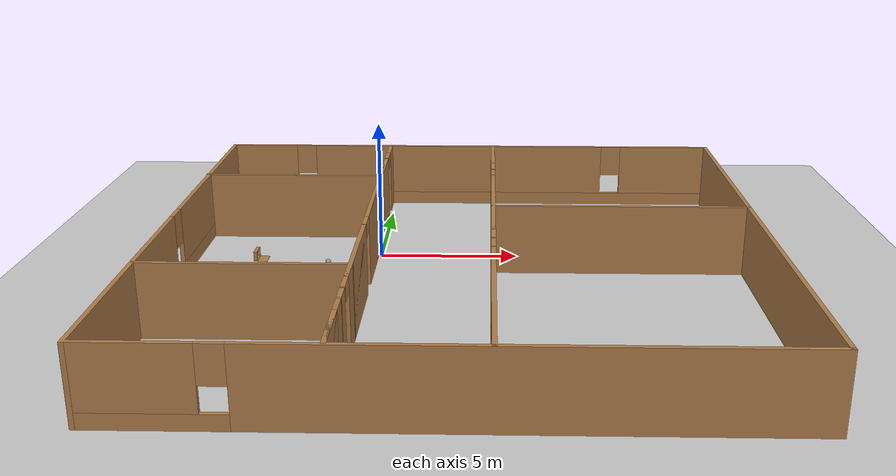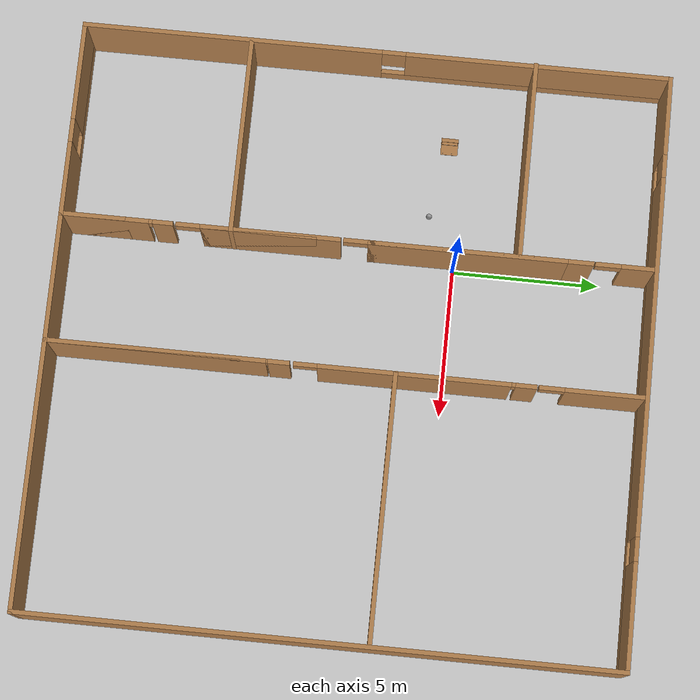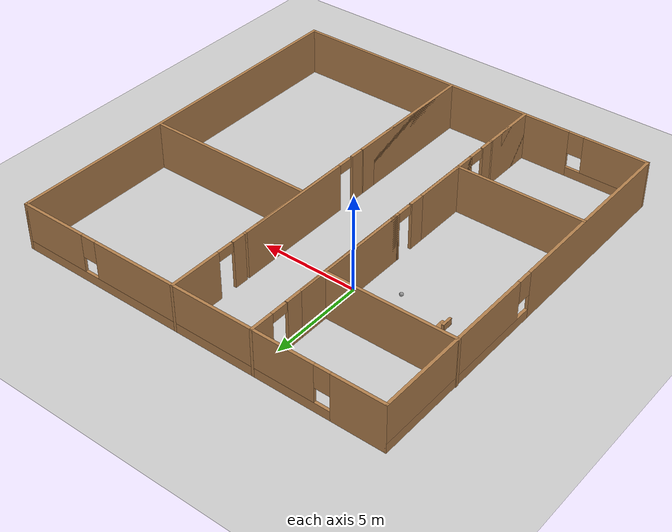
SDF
<sdf version="1.7">
 <world name="default">
  <model name="ground_plane">
   <static>1</static>
   <link name="link">
    <collision name="collision">
     <geometry><plane><normal>0 0 1</normal><size>100 100</size></plane></geometry>
     <surface>
      <contact><collide_bitmask>65535</collide_bitmask></contact>
      <friction><ode><mu>100</mu><mu2>50</mu2></ode></friction>
     </surface>
    </collision>
    <visual name="visual">
     <cast_shadows>0</cast_shadows>
     <geometry><plane><normal>0 0 1</normal><size>100 100</size></plane></geometry>
     <material>
      <script><uri>file://media/materials/scripts/gazebo.material</uri><name>Gazebo/Grey</name></script>
     </material>
    </visual>
   </link>
  </model>
  <model name="building">
   <pose>3.10221 -3.25388 0 0 -0 0</pose>
   <link name="Wall_11">
    <collision name="Wall_11_Collision">
     <geometry><box><size>6.75 0.15 2.5</size></box></geometry>
     <pose>0 0 1.25 0 -0 0</pose>
    </collision>
    <visual name="Wall_11_Visual">
     <pose>0 0 1.25 0 -0 0</pose>
     <geometry><box><size>6.75 0.15 2.5</size></box></geometry>
     <material>
      <script><uri>file://media/materials/scripts/gazebo.material</uri><name>Gazebo/Wood</name></script>
      <ambient>0.996078 0.47451 0.0196078 1</ambient>
     </material>
     <meta><layer>0</layer></meta>
    </visual>
    <pose>-6.6429 5.37717 0 0 -0 3.14159</pose>
   </link>
   <link name="Wall_13">
    <collision name="Wall_13_Collision">
     <geometry><box><size>6.75 0.15 2.5</size></box></geometry>
     <pose>0 0 1.25 0 -0 0</pose>
    </collision>
    <visual name="Wall_13_Visual">
     <pose>0 0 1.25 0 -0 0</pose>
     <geometry><box><size>6.75 0.15 2.5</size></box></geometry>
     <material>
      <script><uri>file://media/materials/scripts/gazebo.material</uri><name>Gazebo/Wood</name></script>
      <ambient>0.996078 0.47451 0.0196078 1</ambient>
     </material>
     <meta><layer>0</layer></meta>
    </visual>
    <pose>-6.5897 -4.25211 0 0 -0 3.14159</pose>
   </link>
   <link name="Wall_15">
    <collision name="Wall_15_Collision">
     <geometry><box><size>9 0.15 2.5</size></box></geometry>
     <pose>0 0 1.25 0 -0 0</pose>
    </collision>
    <visual name="Wall_15_Visual">
     <pose>0 0 1.25 0 -0 0</pose>
     <geometry><box><size>9 0.15 2.5</size></box></geometry>
     <material>
      <script><uri>file://media/materials/scripts/gazebo.material</uri><name>Gazebo/Wood</name></script>
      <ambient>0.996078 0.47451 0.0196078 1</ambient>
     </material>
     <meta><layer>0</layer></meta>
    </visual>
    <pose>5.47114 1.65314 0 0 -0 0</pose>
   </link>
   <link name="Wall_2">
    <pose>0.017895 9.9242 0 0 -0 0</pose>
    <visual name="Wall_2_Visual_0">
     <pose>-8.64042 0 1.25 0 -0 0</pose>
     <geometry><box><size>2.71916 0.15 2.5</size></box></geometry>
     <material>
      <script><uri>file://media/materials/scripts/gazebo.material</uri><name>Gazebo/Wood</name></script>
      <ambient>0.996078 0.47451 0.0196078 1</ambient>
     </material>
     <meta><layer>0</layer></meta>
    </visual>
    <collision name="Wall_2_Collision_0">
     <geometry><box><size>2.71916 0.15 2.5</size></box></geometry>
     <pose>-8.64042 0 1.25 0 -0 0</pose>
    </collision>
    <visual name="Wall_2_Visual_1">
     <pose>1.35958 0 0.25 0 -0 0</pose>
     <geometry><box><size>17.2808 0.15 0.5</size></box></geometry>
     <material>
      <script><uri>file://media/materials/scripts/gazebo.material</uri><name>Gazebo/Wood</name></script>
      <ambient>0.996078 0.47451 0.0196078 1</ambient>
     </material>
     <meta><layer>0</layer></meta>
    </visual>
    <collision name="Wall_2_Collision_1">
     <geometry><box><size>17.2808 0.15 0.5</size></box></geometry>
     <pose>1.35958 0 0.25 0 -0 0</pose>
    </collision>
    <visual name="Wall_2_Visual_2">
     <pose>-0.458517 0 1.5 0 -0 0</pose>
     <geometry><box><size>12.0446 0.15 2</size></box></geometry>
     <material>
      <script><uri>file://media/materials/scripts/gazebo.material</uri><name>Gazebo/Wood</name></script>
      <ambient>0.996078 0.47451 0.0196078 1</ambient>
     </material>
     <meta><layer>0</layer></meta>
    </visual>
    <collision name="Wall_2_Collision_2">
     <geometry><box><size>12.0446 0.15 2</size></box></geometry>
     <pose>-0.458517 0 1.5 0 -0 0</pose>
    </collision>
    <visual name="Wall_2_Visual_3">
     <pose>8.1819 0 1.5 0 -0 0</pose>
     <geometry><box><size>3.63619 0.15 2</size></box></geometry>
     <material>
      <script><uri>file://media/materials/scripts/gazebo.material</uri><name>Gazebo/Wood</name></script>
      <ambient>0.996078 0.47451 0.0196078 1</ambient>
     </material>
     <meta><layer>0</layer></meta>
    </visual>
    <collision name="Wall_2_Collision_3">
     <geometry><box><size>3.63619 0.15 2</size></box></geometry>
     <pose>8.1819 0 1.5 0 -0 0</pose>
    </collision>
    <visual name="Wall_2_Visual_4">
     <pose>-6.88084 0 1.9 0 -0 0</pose>
     <geometry><box><size>0.8 0.15 1.2</size></box></geometry>
     <material>
      <script><uri>file://media/materials/scripts/gazebo.material</uri><name>Gazebo/Wood</name></script>
      <ambient>0.996078 0.47451 0.0196078 1</ambient>
     </material>
     <meta><layer>0</layer></meta>
    </visual>
    <collision name="Wall_2_Collision_4">
     <geometry><box><size>0.8 0.15 1.2</size></box></geometry>
     <pose>-6.88084 0 1.9 0 -0 0</pose>
    </collision>
    <visual name="Wall_2_Visual_5">
     <pose>5.96381 0 1.9 0 -0 0</pose>
     <geometry><box><size>0.8 0.15 1.2</size></box></geometry>
     <material>
      <script><uri>file://media/materials/scripts/gazebo.material</uri><name>Gazebo/Wood</name></script>
      <ambient>0.996078 0.47451 0.0196078 1</ambient>
     </material>
     <meta><layer>0</layer></meta>
    </visual>
    <collision name="Wall_2_Collision_5">
     <geometry><box><size>0.8 0.15 1.2</size></box></geometry>
     <pose>5.96381 0 1.9 0 -0 0</pose>
    </collision>
   </link>
   <link name="Wall_3">
    <collision name="Wall_3_Collision">
     <geometry><box><size>20 0.15 2.5</size></box></geometry>
     <pose>0 0 1.25 0 -0 0</pose>
    </collision>
    <visual name="Wall_3_Visual">
     <pose>0 0 1.25 0 -0 0</pose>
     <geometry><box><size>20 0.15 2.5</size></box></geometry>
     <material>
      <script><uri>file://media/materials/scripts/gazebo.material</uri><name>Gazebo/Wood</name></script>
      <ambient>0.996078 0.47451 0.0196078 1</ambient>
     </material>
     <meta><layer>0</layer></meta>
    </visual>
    <pose>9.9429 -0.0008 0 0 -0 -1.5708</pose>
   </link>
   <link name="Wall_4">
    <pose>0.017895 -9.9258 0 0 -0 3.14159</pose>
    <visual name="Wall_4_Visual_0">
     <pose>-2.10608 0 1.25 0 -0 0</pose>
     <geometry><box><size>15.7878 0.15 2.5</size></box></geometry>
     <material>
      <script><uri>file://media/materials/scripts/gazebo.material</uri><name>Gazebo/Wood</name></script>
      <ambient>0.996078 0.47451 0.0196078 1</ambient>
     </material>
     <meta><layer>0</layer></meta>
    </visual>
    <collision name="Wall_4_Collision_0">
     <geometry><box><size>15.7878 0.15 2.5</size></box></geometry>
     <pose>-2.10608 0 1.25 0 -0 0</pose>
    </collision>
    <visual name="Wall_4_Visual_1">
     <pose>7.89392 0 0.25 0 -0 0</pose>
     <geometry><box><size>4.21216 0.15 0.5</size></box></geometry>
     <material>
      <script><uri>file://media/materials/scripts/gazebo.material</uri><name>Gazebo/Wood</name></script>
      <ambient>0.996078 0.47451 0.0196078 1</ambient>
     </material>
     <meta><layer>0</layer></meta>
    </visual>
    <collision name="Wall_4_Collision_1">
     <geometry><box><size>4.21216 0.15 0.5</size></box></geometry>
     <pose>7.89392 0 0.25 0 -0 0</pose>
    </collision>
    <visual name="Wall_4_Visual_2">
     <pose>8.29392 0 1.5 0 -0 0</pose>
     <geometry><box><size>3.41215 0.15 2</size></box></geometry>
     <material>
      <script><uri>file://media/materials/scripts/gazebo.material</uri><name>Gazebo/Wood</name></script>
      <ambient>0.996078 0.47451 0.0196078 1</ambient>
     </material>
     <meta><layer>0</layer></meta>
    </visual>
    <collision name="Wall_4_Collision_2">
     <geometry><box><size>3.41215 0.15 2</size></box></geometry>
     <pose>8.29392 0 1.5 0 -0 0</pose>
    </collision>
    <visual name="Wall_4_Visual_3">
     <pose>6.18785 0 1.9 0 -0 0</pose>
     <geometry><box><size>0.8 0.15 1.2</size></box></geometry>
     <material>
      <script><uri>file://media/materials/scripts/gazebo.material</uri><name>Gazebo/Wood</name></script>
      <ambient>0.996078 0.47451 0.0196078 1</ambient>
     </material>
     <meta><layer>0</layer></meta>
    </visual>
    <collision name="Wall_4_Collision_3">
     <geometry><box><size>0.8 0.15 1.2</size></box></geometry>
     <pose>6.18785 0 1.9 0 -0 0</pose>
    </collision>
   </link>
   <link name="Wall_5">
    <pose>-9.9071 -0.0008 0 0 -0 1.5708</pose>
    <visual name="Wall_5_Visual_0">
     <pose>-4.91256 0 1.25 0 -0 0</pose>
     <geometry><box><size>10.1749 0.15 2.5</size></box></geometry>
     <material>
      <script><uri>file://media/materials/scripts/gazebo.material</uri><name>Gazebo/Wood</name></script>
      <ambient>0.996078 0.47451 0.0196078 1</ambient>
     </material>
     <meta><layer>0</layer></meta>
    </visual>
    <collision name="Wall_5_Collision_0">
     <geometry><box><size>10.1749 0.15 2.5</size></box></geometry>
     <pose>-4.91256 0 1.25 0 -0 0</pose>
    </collision>
    <visual name="Wall_5_Visual_1">
     <pose>5.08744 0 0.25 0 -0 0</pose>
     <geometry><box><size>9.82512 0.15 0.5</size></box></geometry>
     <material>
      <script><uri>file://media/materials/scripts/gazebo.material</uri><name>Gazebo/Wood</name></script>
      <ambient>0.996078 0.47451 0.0196078 1</ambient>
     </material>
     <meta><layer>0</layer></meta>
    </visual>
    <collision name="Wall_5_Collision_1">
     <geometry><box><size>9.82512 0.15 0.5</size></box></geometry>
     <pose>5.08744 0 0.25 0 -0 0</pose>
    </collision>
    <visual name="Wall_5_Visual_2">
     <pose>5.48744 0 1.5 0 -0 0</pose>
     <geometry><box><size>9.02511 0.15 2</size></box></geometry>
     <material>
      <script><uri>file://media/materials/scripts/gazebo.material</uri><name>Gazebo/Wood</name></script>
      <ambient>0.996078 0.47451 0.0196078 1</ambient>
     </material>
     <meta><layer>0</layer></meta>
    </visual>
    <collision name="Wall_5_Collision_2">
     <geometry><box><size>9.02511 0.15 2</size></box></geometry>
     <pose>5.48744 0 1.5 0 -0 0</pose>
    </collision>
    <visual name="Wall_5_Visual_3">
     <pose>0.574885 0 1.9 0 -0 0</pose>
     <geometry><box><size>0.8 0.15 1.2</size></box></geometry>
     <material>
      <script><uri>file://media/materials/scripts/gazebo.material</uri><name>Gazebo/Wood</name></script>
      <ambient>0.996078 0.47451 0.0196078 1</ambient>
     </material>
     <meta><layer>0</layer></meta>
    </visual>
    <collision name="Wall_5_Collision_3">
     <geometry><box><size>0.8 0.15 1.2</size></box></geometry>
     <pose>0.574885 0 1.9 0 -0 0</pose>
    </collision>
   </link>
   <link name="Wall_7">
    <pose>-3.2897 0.0008 0 0 -0 -1.5708</pose>
    <visual name="Wall_7_Visual_0">
     <pose>-9.37307 0 1.25 0 -0 0</pose>
     <geometry><box><size>1.25386 0.15 2.5</size></box></geometry>
     <material>
      <script><uri>file://media/materials/scripts/gazebo.material</uri><name>Gazebo/Wood</name></script>
      <ambient>0.996078 0.47451 0.0196078 1</ambient>
     </material>
     <meta><layer>0</layer></meta>
    </visual>
    <collision name="Wall_7_Collision_0">
     <geometry><box><size>1.25386 0.15 2.5</size></box></geometry>
     <pose>-9.37307 0 1.25 0 -0 0</pose>
    </collision>
    <visual name="Wall_7_Visual_1">
     <pose>-4.08502 0 1.25 0 -0 0</pose>
     <geometry><box><size>7.52223 0.15 2.5</size></box></geometry>
     <material>
      <script><uri>file://media/materials/scripts/gazebo.material</uri><name>Gazebo/Wood</name></script>
      <ambient>0.996078 0.47451 0.0196078 1</ambient>
     </material>
     <meta><layer>0</layer></meta>
    </visual>
    <collision name="Wall_7_Collision_1">
     <geometry><box><size>7.52223 0.15 2.5</size></box></geometry>
     <pose>-4.08502 0 1.25 0 -0 0</pose>
    </collision>
    <visual name="Wall_7_Visual_2">
     <pose>-3.65402 0 1.25 0 -0 0</pose>
     <geometry><box><size>6.66023 0.15 2.5</size></box></geometry>
     <material>
      <script><uri>file://media/materials/scripts/gazebo.material</uri><name>Gazebo/Wood</name></script>
      <ambient>0.996078 0.47451 0.0196078 1</ambient>
     </material>
     <meta><layer>0</layer></meta>
    </visual>
    <collision name="Wall_7_Collision_2">
     <geometry><box><size>6.66023 0.15 2.5</size></box></geometry>
     <pose>-3.65402 0 1.25 0 -0 0</pose>
    </collision>
    <visual name="Wall_7_Visual_3">
     <pose>2.92853 0 1.25 0 -0 0</pose>
     <geometry><box><size>4.70486 0.15 2.5</size></box></geometry>
     <material>
      <script><uri>file://media/materials/scripts/gazebo.material</uri><name>Gazebo/Wood</name></script>
      <ambient>0.996078 0.47451 0.0196078 1</ambient>
     </material>
     <meta><layer>0</layer></meta>
    </visual>
    <collision name="Wall_7_Collision_3">
     <geometry><box><size>4.70486 0.15 2.5</size></box></geometry>
     <pose>2.92853 0 1.25 0 -0 0</pose>
    </collision>
    <visual name="Wall_7_Visual_4">
     <pose>3.33636 0 1.25 0 -0 0</pose>
     <geometry><box><size>3.8892 0.15 2.5</size></box></geometry>
     <material>
      <script><uri>file://media/materials/scripts/gazebo.material</uri><name>Gazebo/Wood</name></script>
      <ambient>0.996078 0.47451 0.0196078 1</ambient>
     </material>
     <meta><layer>0</layer></meta>
    </visual>
    <collision name="Wall_7_Collision_4">
     <geometry><box><size>3.8892 0.15 2.5</size></box></geometry>
     <pose>3.33636 0 1.25 0 -0 0</pose>
    </collision>
    <visual name="Wall_7_Visual_5">
     <pose>6.52698 0 1.25 0 -0 0</pose>
     <geometry><box><size>0.692034 0.15 2.5</size></box></geometry>
     <material>
      <script><uri>file://media/materials/scripts/gazebo.material</uri><name>Gazebo/Wood</name></script>
      <ambient>0.996078 0.47451 0.0196078 1</ambient>
     </material>
     <meta><layer>0</layer></meta>
    </visual>
    <collision name="Wall_7_Collision_5">
     <geometry><box><size>0.692034 0.15 2.5</size></box></geometry>
     <pose>6.52698 0 1.25 0 -0 0</pose>
    </collision>
    <visual name="Wall_7_Visual_6">
     <pose>8.49733 0 1.25 0 -0 0</pose>
     <geometry><box><size>3.00534 0.15 2.5</size></box></geometry>
     <material>
      <script><uri>file://media/materials/scripts/gazebo.material</uri><name>Gazebo/Wood</name></script>
      <ambient>0.996078 0.47451 0.0196078 1</ambient>
     </material>
     <meta><layer>0</layer></meta>
    </visual>
    <collision name="Wall_7_Collision_6">
     <geometry><box><size>3.00534 0.15 2.5</size></box></geometry>
     <pose>8.49733 0 1.25 0 -0 0</pose>
    </collision>
    <visual name="Wall_7_Visual_7">
     <pose>8.8865 0 1.25 0 -0 0</pose>
     <geometry><box><size>2.22701 0.15 2.5</size></box></geometry>
     <material>
      <script><uri>file://media/materials/scripts/gazebo.material</uri><name>Gazebo/Wood</name></script>
      <ambient>0.996078 0.47451 0.0196078 1</ambient>
     </material>
     <meta><layer>0</layer></meta>
    </visual>
    <collision name="Wall_7_Collision_7">
     <geometry><box><size>2.22701 0.15 2.5</size></box></geometry>
     <pose>8.8865 0 1.25 0 -0 0</pose>
    </collision>
    <visual name="Wall_7_Visual_8">
     <pose>-8.31513 0 2.25 0 -0 0</pose>
     <geometry><box><size>0.862004 0.15 0.5</size></box></geometry>
     <material>
      <script><uri>file://media/materials/scripts/gazebo.material</uri><name>Gazebo/Wood</name></script>
      <ambient>0.996078 0.47451 0.0196078 1</ambient>
     </material>
     <meta><layer>0</layer></meta>
    </visual>
    <collision name="Wall_7_Collision_8">
     <geometry><box><size>0.862004 0.15 0.5</size></box></geometry>
     <pose>-8.31513 0 2.25 0 -0 0</pose>
    </collision>
    <visual name="Wall_7_Visual_9">
     <pose>0.083926 0 2.25 0 -0 0</pose>
     <geometry><box><size>0.815661 0.15 0.5</size></box></geometry>
     <material>
      <script><uri>file://media/materials/scripts/gazebo.material</uri><name>Gazebo/Wood</name></script>
      <ambient>0.996078 0.47451 0.0196078 1</ambient>
     </material>
     <meta><layer>0</layer></meta>
    </visual>
    <collision name="Wall_7_Collision_9">
     <geometry><box><size>0.815661 0.15 0.5</size></box></geometry>
     <pose>0.083926 0 2.25 0 -0 0</pose>
    </collision>
    <visual name="Wall_7_Visual_10">
     <pose>0.083926 0 2.25 0 -0 0</pose>
     <geometry><box><size>0.815661 0.15 0.5</size></box></geometry>
     <material>
      <script><uri>file://media/materials/scripts/gazebo.material</uri><name>Gazebo/Wood</name></script>
      <ambient>0.996078 0.47451 0.0196078 1</ambient>
     </material>
     <meta><layer>0</layer></meta>
    </visual>
    <collision name="Wall_7_Collision_10">
     <geometry><box><size>0.815661 0.15 0.5</size></box></geometry>
     <pose>0.083926 0 2.25 0 -0 0</pose>
    </collision>
    <visual name="Wall_7_Visual_11">
     <pose>5.68781 0 2.25 0 -0 0</pose>
     <geometry><box><size>0.813706 0.15 0.5</size></box></geometry>
     <material>
      <script><uri>file://media/materials/scripts/gazebo.material</uri><name>Gazebo/Wood</name></script>
      <ambient>0.996078 0.47451 0.0196078 1</ambient>
     </material>
     <meta><layer>0</layer></meta>
    </visual>
    <collision name="Wall_7_Collision_11">
     <geometry><box><size>0.813706 0.15 0.5</size></box></geometry>
     <pose>5.68781 0 2.25 0 -0 0</pose>
    </collision>
    <visual name="Wall_7_Visual_12">
     <pose>5.68781 0 2.25 0 -0 0</pose>
     <geometry><box><size>0.813706 0.15 0.5</size></box></geometry>
     <material>
      <script><uri>file://media/materials/scripts/gazebo.material</uri><name>Gazebo/Wood</name></script>
      <ambient>0.996078 0.47451 0.0196078 1</ambient>
     </material>
     <meta><layer>0</layer></meta>
    </visual>
    <collision name="Wall_7_Collision_12">
     <geometry><box><size>0.813706 0.15 0.5</size></box></geometry>
     <pose>5.68781 0 2.25 0 -0 0</pose>
    </collision>
    <visual name="Wall_7_Visual_13">
     <pose>6.93383 0 2.25 0 -0 0</pose>
     <geometry><box><size>0.121672 0.15 0.5</size></box></geometry>
     <material>
      <script><uri>file://media/materials/scripts/gazebo.material</uri><name>Gazebo/Wood</name></script>
      <ambient>0.996078 0.47451 0.0196078 1</ambient>
     </material>
     <meta><layer>0</layer></meta>
    </visual>
    <collision name="Wall_7_Collision_13">
     <geometry><box><size>0.121672 0.15 0.5</size></box></geometry>
     <pose>6.93383 0 2.25 0 -0 0</pose>
    </collision>
   </link>
   <link name="Wall_9">
    <pose>1.01954 0.0008 0 0 -0 -1.5708</pose>
    <visual name="Wall_9_Visual_0">
     <pose>-8.60665 0 1.25 0 -0 0</pose>
     <geometry><box><size>2.78671 0.15 2.5</size></box></geometry>
     <material>
      <script><uri>file://media/materials/scripts/gazebo.material</uri><name>Gazebo/Wood</name></script>
      <ambient>0.996078 0.47451 0.0196078 1</ambient>
     </material>
     <meta><layer>0</layer></meta>
    </visual>
    <collision name="Wall_9_Collision_0">
     <geometry><box><size>2.78671 0.15 2.5</size></box></geometry>
     <pose>-8.60665 0 1.25 0 -0 0</pose>
    </collision>
    <visual name="Wall_9_Visual_1">
     <pose>-5.95254 0 1.25 0 -0 0</pose>
     <geometry><box><size>0.7215 0.15 2.5</size></box></geometry>
     <material>
      <script><uri>file://media/materials/scripts/gazebo.material</uri><name>Gazebo/Wood</name></script>
      <ambient>0.996078 0.47451 0.0196078 1</ambient>
     </material>
     <meta><layer>0</layer></meta>
    </visual>
    <collision name="Wall_9_Collision_1">
     <geometry><box><size>0.7215 0.15 2.5</size></box></geometry>
     <pose>-5.95254 0 1.25 0 -0 0</pose>
    </collision>
    <visual name="Wall_9_Visual_2">
     <pose>-2.26244 0 1.25 0 -0 0</pose>
     <geometry><box><size>6.39971 0.15 2.5</size></box></geometry>
     <material>
      <script><uri>file://media/materials/scripts/gazebo.material</uri><name>Gazebo/Wood</name></script>
      <ambient>0.996078 0.47451 0.0196078 1</ambient>
     </material>
     <meta><layer>0</layer></meta>
    </visual>
    <collision name="Wall_9_Collision_2">
     <geometry><box><size>6.39971 0.15 2.5</size></box></geometry>
     <pose>-2.26244 0 1.25 0 -0 0</pose>
    </collision>
    <visual name="Wall_9_Visual_3">
     <pose>-1.87719 0 1.25 0 -0 0</pose>
     <geometry><box><size>5.62921 0.15 2.5</size></box></geometry>
     <material>
      <script><uri>file://media/materials/scripts/gazebo.material</uri><name>Gazebo/Wood</name></script>
      <ambient>0.996078 0.47451 0.0196078 1</ambient>
     </material>
     <meta><layer>0</layer></meta>
    </visual>
    <collision name="Wall_9_Collision_3">
     <geometry><box><size>5.62921 0.15 2.5</size></box></geometry>
     <pose>-1.87719 0 1.25 0 -0 0</pose>
    </collision>
    <visual name="Wall_9_Visual_4">
     <pose>2.20266 0 1.25 0 -0 0</pose>
     <geometry><box><size>0.730489 0.15 2.5</size></box></geometry>
     <material>
      <script><uri>file://media/materials/scripts/gazebo.material</uri><name>Gazebo/Wood</name></script>
      <ambient>0.996078 0.47451 0.0196078 1</ambient>
     </material>
     <meta><layer>0</layer></meta>
    </visual>
    <collision name="Wall_9_Collision_4">
     <geometry><box><size>0.730489 0.15 2.5</size></box></geometry>
     <pose>2.20266 0 1.25 0 -0 0</pose>
    </collision>
    <visual name="Wall_9_Visual_5">
     <pose>6.31095 0 1.25 0 -0 0</pose>
     <geometry><box><size>7.3781 0.15 2.5</size></box></geometry>
     <material>
      <script><uri>file://media/materials/scripts/gazebo.material</uri><name>Gazebo/Wood</name></script>
      <ambient>0.996078 0.47451 0.0196078 1</ambient>
     </material>
     <meta><layer>0</layer></meta>
    </visual>
    <collision name="Wall_9_Collision_5">
     <geometry><box><size>7.3781 0.15 2.5</size></box></geometry>
     <pose>6.31095 0 1.25 0 -0 0</pose>
    </collision>
    <visual name="Wall_9_Visual_6">
     <pose>6.73395 0 1.25 0 -0 0</pose>
     <geometry><box><size>6.53209 0.15 2.5</size></box></geometry>
     <material>
      <script><uri>file://media/materials/scripts/gazebo.material</uri><name>Gazebo/Wood</name></script>
      <ambient>0.996078 0.47451 0.0196078 1</ambient>
     </material>
     <meta><layer>0</layer></meta>
    </visual>
    <collision name="Wall_9_Collision_6">
     <geometry><box><size>6.53209 0.15 2.5</size></box></geometry>
     <pose>6.73395 0 1.25 0 -0 0</pose>
    </collision>
    <visual name="Wall_9_Visual_7">
     <pose>-6.78779 0 2.25 0 -0 0</pose>
     <geometry><box><size>0.851 0.15 0.5</size></box></geometry>
     <material>
      <script><uri>file://media/materials/scripts/gazebo.material</uri><name>Gazebo/Wood</name></script>
      <ambient>0.996078 0.47451 0.0196078 1</ambient>
     </material>
     <meta><layer>0</layer></meta>
    </visual>
    <collision name="Wall_9_Collision_7">
     <geometry><box><size>0.851 0.15 0.5</size></box></geometry>
     <pose>-6.78779 0 2.25 0 -0 0</pose>
    </collision>
    <visual name="Wall_9_Visual_8">
     <pose>-5.52704 0 2.25 0 -0 0</pose>
     <geometry><box><size>0.1295 0.15 0.5</size></box></geometry>
     <material>
      <script><uri>file://media/materials/scripts/gazebo.material</uri><name>Gazebo/Wood</name></script>
      <ambient>0.996078 0.47451 0.0196078 1</ambient>
     </material>
     <meta><layer>0</layer></meta>
    </visual>
    <collision name="Wall_9_Collision_8">
     <geometry><box><size>0.1295 0.15 0.5</size></box></geometry>
     <pose>-5.52704 0 2.25 0 -0 0</pose>
    </collision>
    <visual name="Wall_9_Visual_9">
     <pose>1.32966 0 2.25 0 -0 0</pose>
     <geometry><box><size>0.784481 0.15 0.5</size></box></geometry>
     <material>
      <script><uri>file://media/materials/scripts/gazebo.material</uri><name>Gazebo/Wood</name></script>
      <ambient>0.996078 0.47451 0.0196078 1</ambient>
     </material>
     <meta><layer>0</layer></meta>
    </visual>
    <collision name="Wall_9_Collision_9">
     <geometry><box><size>0.784481 0.15 0.5</size></box></geometry>
     <pose>1.32966 0 2.25 0 -0 0</pose>
    </collision>
    <visual name="Wall_9_Visual_10">
     <pose>1.32966 0 2.25 0 -0 0</pose>
     <geometry><box><size>0.784481 0.15 0.5</size></box></geometry>
     <material>
      <script><uri>file://media/materials/scripts/gazebo.material</uri><name>Gazebo/Wood</name></script>
      <ambient>0.996078 0.47451 0.0196078 1</ambient>
     </material>
     <meta><layer>0</layer></meta>
    </visual>
    <collision name="Wall_9_Collision_10">
     <geometry><box><size>0.784481 0.15 0.5</size></box></geometry>
     <pose>1.32966 0 2.25 0 -0 0</pose>
    </collision>
    <visual name="Wall_9_Visual_11">
     <pose>2.5949 0 2.25 0 -0 0</pose>
     <geometry><box><size>0.053992 0.15 0.5</size></box></geometry>
     <material>
      <script><uri>file://media/materials/scripts/gazebo.material</uri><name>Gazebo/Wood</name></script>
      <ambient>0.996078 0.47451 0.0196078 1</ambient>
     </material>
     <meta><layer>0</layer></meta>
    </visual>
    <collision name="Wall_9_Collision_11">
     <geometry><box><size>0.053992 0.15 0.5</size></box></geometry>
     <pose>2.5949 0 2.25 0 -0 0</pose>
    </collision>
   </link>
   <static>1</static>
  </model>
  <model name="my_ball">
   <link name="link_0">
    <inertial>
     <mass>1</mass>
     <inertia><ixx>0.1</ixx><ixy>0</ixy><ixz>0</ixz><iyy>0.1</iyy><iyz>0</iyz><izz>0.1</izz></inertia>
    </inertial>
    <visual name="visual">
     <geometry><sphere><radius>0.1</radius></sphere></geometry>
     <material>
      <lighting>1</lighting>
      <script><uri>file://media/materials/scripts/gazebo.material</uri><name>Gazebo/Grey</name></script>
      <shader type="pixel"><normal_map>__default__</normal_map></shader>
      <ambient>1 1 1 1</ambient>
      <diffuse>1 1 1 1</diffuse>
      <specular>1 1 1 1</specular>
      <emissive>1 1 1 1</emissive>
     </material>
    </visual>
    <collision name="collision">
     <geometry><sphere><radius>0.1</radius></sphere></geometry>
     <surface>
      <friction>
       <ode><mu>1</mu><mu2>1</mu2><fdir1>0 0 0</fdir1><slip1>0</slip1><slip2>0</slip2></ode>
       <torsional>
        <coefficient>1</coefficient>
        <patch_radius>0</patch_radius>
        <surface_radius>0</surface_radius>
        <use_patch_radius>1</use_patch_radius>
        <ode><slip>0</slip></ode>
       </torsional>
      </friction>
      <bounce><restitution_coefficient>0</restitution_coefficient><threshold>1e+06</threshold></bounce>
      <contact>
       <collide_without_contact>0</collide_without_contact>
       <collide_without_contact_bitmask>1</collide_without_contact_bitmask>
       <collide_bitmask>1</collide_bitmask>
       <ode>
        <soft_cfm>0</soft_cfm>
        <soft_erp>0.2</soft_erp>
        <kp>1e+13</kp>
        <kd>1</kd>
        <max_vel>0.01</max_vel>
        <min_depth>0</min_depth>
       </ode>
       <bullet>
        <split_impulse>1</split_impulse>
        <split_impulse_penetration_threshold>-0.01</split_impulse_penetration_threshold>
        <soft_cfm>0</soft_cfm>
        <soft_erp>0.2</soft_erp>
        <kp>1e+13</kp>
        <kd>1</kd>
       </bullet>
      </contact>
     </surface>
    </collision>
   </link>
   <static>0</static>
   <pose>-1.88006 -0.960437 0.1 0 -0 0</pose>
  </model>
  <model name="wooden_case">
   <link name="base">
    <pose>0 0 0.024 0 -0 0</pose>
    <inertial>
     <pose>-0.022184 0 0.171592 0 -0 0</pose>
     <mass>3.96264</mass>
     <inertia>
      <ixx>0.213536</ixx>
      <ixy>0</ixy>
      <ixz>0.000779377</ixz>
      <iyy>0.0708943</iyy>
      <iyz>0</iyz>
      <izz>0.154604</izz>
     </inertia>
    </inertial>
    <collision name="collision_back">
     <pose>-0.053975 0 0.1778 0 -0 0</pose>
     <geometry><box><size>0.01905 0.5461 0.3175</size></box></geometry>
     <surface>
      <contact>
       <poissons_ratio>0.347</poissons_ratio>
       <elastic_modulus>8.8e+09</elastic_modulus>
       <ode><kp>100000</kp><kd>100</kd><max_vel>100</max_vel><min_depth>0.001</min_depth></ode>
      </contact>
      <friction>
       <torsional>
        <coefficient>1</coefficient>
        <use_patch_radius>0</use_patch_radius>
        <surface_radius>0.01</surface_radius>
       </torsional>
      </friction>
     </surface>
    </collision>
    <visual name="visual_back">
     <pose>-0.053975 0 0.1778 0 -0 0</pose>
     <geometry><box><size>0.01905 0.5461 0.3175</size></box></geometry>
     <material>
      <script><uri>file://media/materials/scripts/gazebo.material</uri><name>Gazebo/Wood</name></script>
     </material>
    </visual>
    <collision name="collision_bottom">
     <pose>0 0 0.009525 0 -0 0</pose>
     <geometry><box><size>0.127 0.5842 0.01905</size></box></geometry>
     <surface>
      <contact>
       <poissons_ratio>0.347</poissons_ratio>
       <elastic_modulus>8.8e+09</elastic_modulus>
       <ode><kp>100000</kp><kd>100</kd><max_vel>100</max_vel><min_depth>0.001</min_depth></ode>
      </contact>
      <friction>
       <torsional>
        <coefficient>1</coefficient>
        <use_patch_radius>0</use_patch_radius>
        <surface_radius>0.01</surface_radius>
       </torsional>
      </friction>
     </surface>
    </collision>
    <visual name="visual_bottom">
     <pose>0 0 0.009525 0 -0 0</pose>
     <geometry><box><size>0.127 0.5842 0.01905</size></box></geometry>
     <material>
      <script><uri>file://media/materials/scripts/gazebo.material</uri><name>Gazebo/Wood</name></script>
     </material>
    </visual>
    <collision name="collision_top">
     <pose>0 0 0.346075 0 -0 0</pose>
     <geometry><box><size>0.127 0.5842 0.01905</size></box></geometry>
     <surface>
      <contact>
       <poissons_ratio>0.347</poissons_ratio>
       <elastic_modulus>8.8e+09</elastic_modulus>
       <ode><kp>100000</kp><kd>100</kd><max_vel>100</max_vel><min_depth>0.001</min_depth></ode>
      </contact>
      <friction>
       <torsional>
        <coefficient>1</coefficient>
        <use_patch_radius>0</use_patch_radius>
        <surface_radius>0.01</surface_radius>
       </torsional>
      </friction>
     </surface>
    </collision>
    <visual name="visual_top">
     <pose>0 0 0.346075 0 -0 0</pose>
     <geometry><box><size>0.127 0.5842 0.01905</size></box></geometry>
     <material>
      <script><uri>file://media/materials/scripts/gazebo.material</uri><name>Gazebo/Wood</name></script>
     </material>
    </visual>
    <collision name="collision_left">
     <pose>0 -0.282575 0.1778 0 -0 0</pose>
     <geometry><box><size>0.127 0.01905 0.3175</size></box></geometry>
     <surface>
      <contact>
       <poissons_ratio>0.347</poissons_ratio>
       <elastic_modulus>8.8e+09</elastic_modulus>
       <ode><kp>100000</kp><kd>100</kd><max_vel>100</max_vel><min_depth>0.001</min_depth></ode>
      </contact>
      <friction>
       <torsional>
        <coefficient>1</coefficient>
        <use_patch_radius>0</use_patch_radius>
        <surface_radius>0.01</surface_radius>
       </torsional>
      </friction>
     </surface>
    </collision>
    <visual name="visual_left">
     <pose>0 -0.282575 0.1778 0 -0 0</pose>
     <geometry><box><size>0.127 0.01905 0.3175</size></box></geometry>
     <material>
      <script><uri>file://media/materials/scripts/gazebo.material</uri><name>Gazebo/Wood</name></script>
     </material>
    </visual>
    <collision name="collision_right">
     <pose>0 0.282575 0.1778 0 -0 0</pose>
     <geometry><box><size>0.127 0.01905 0.3175</size></box></geometry>
     <surface>
      <contact>
       <poissons_ratio>0.347</poissons_ratio>
       <elastic_modulus>8.8e+09</elastic_modulus>
       <ode><kp>100000</kp><kd>100</kd><max_vel>100</max_vel><min_depth>0.001</min_depth></ode>
      </contact>
      <friction>
       <torsional>
        <coefficient>1</coefficient>
        <use_patch_radius>0</use_patch_radius>
        <surface_radius>0.01</surface_radius>
       </torsional>
      </friction>
     </surface>
    </collision>
    <visual name="visual_right">
     <pose>0 0.282575 0.1778 0 -0 0</pose>
     <geometry><box><size>0.127 0.01905 0.3175</size></box></geometry>
     <material>
      <script><uri>file://media/materials/scripts/gazebo.material</uri><name>Gazebo/Wood</name></script>
     </material>
    </visual>
    <collision name="collision_block_left">
     <pose>0.0095 -0.2151 -0.012 0 -0 0</pose>
     <geometry><box><size>0.108 0.05 0.024</size></box></geometry>
     <surface>
      <contact>
       <poissons_ratio>0.347</poissons_ratio>
       <elastic_modulus>8.8e+09</elastic_modulus>
       <ode><kp>100000</kp><kd>100</kd><max_vel>100</max_vel><min_depth>0.001</min_depth></ode>
      </contact>
      <friction>
       <torsional>
        <coefficient>1</coefficient>
        <use_patch_radius>0</use_patch_radius>
        <surface_radius>0.01</surface_radius>
       </torsional>
      </friction>
     </surface>
    </collision>
    <visual name="visual_block_left">
     <pose>0.0095 -0.2151 -0.012 0 -0 0</pose>
     <geometry><box><size>0.108 0.05 0.024</size></box></geometry>
     <material>
      <script><uri>file://media/materials/scripts/gazebo.material</uri><name>Gazebo/Wood</name></script>
     </material>
    </visual>
    <collision name="collision_block_right">
     <pose>0.0095 0.2151 -0.012 0 -0 0</pose>
     <geometry><box><size>0.108 0.05 0.024</size></box></geometry>
     <surface>
      <contact>
       <poissons_ratio>0.347</poissons_ratio>
       <elastic_modulus>8.8e+09</elastic_modulus>
       <ode><kp>100000</kp><kd>100</kd><max_vel>100</max_vel><min_depth>0.001</min_depth></ode>
      </contact>
      <friction>
       <torsional>
        <coefficient>1</coefficient>
        <use_patch_radius>0</use_patch_radius>
        <surface_radius>0.01</surface_radius>
       </torsional>
      </friction>
     </surface>
    </collision>
    <visual name="visual_block_right">
     <pose>0.0095 0.2151 -0.012 0 -0 0</pose>
     <geometry><box><size>0.108 0.05 0.024</size></box></geometry>
     <material>
      <script><uri>file://media/materials/scripts/gazebo.material</uri><name>Gazebo/Wood</name></script>
     </material>
    </visual>
   </link>
   <link name="lid">
    <pose>0.243775 0 0.009525 0 -0 0</pose>
    <inertial>
     <mass>1.97874</mass>
     <inertia>
      <ixx>0.0563367</ixx>
      <ixy>0</ixy>
      <ixz>0</ixz>
      <iyy>0.020911</iyy>
      <iyz>0</iyz>
      <izz>0.0771281</izz>
     </inertia>
    </inertial>
    <collision name="collision">
     <geometry><box><size>0.3556 0.5842 0.01905</size></box></geometry>
     <surface>
      <contact>
       <poissons_ratio>0.347</poissons_ratio>
       <elastic_modulus>8.8e+09</elastic_modulus>
       <ode><kp>100000</kp><kd>100</kd><max_vel>100</max_vel><min_depth>0.001</min_depth></ode>
      </contact>
      <friction>
       <torsional>
        <coefficient>1</coefficient>
        <use_patch_radius>0</use_patch_radius>
        <surface_radius>0.01</surface_radius>
       </torsional>
      </friction>
     </surface>
    </collision>
    <visual name="visual">
     <geometry><box><size>0.3556 0.5842 0.01905</size></box></geometry>
     <material>
      <script><uri>file://media/materials/scripts/gazebo.material</uri><name>Gazebo/Wood</name></script>
     </material>
    </visual>
    <visual name="tee_nut_1">
     <pose>0.122 -0.216 0 0 -0 0</pose>
     <geometry><cylinder><radius>0.00635</radius><length>0.0192405</length></cylinder></geometry>
     <material>
      <script><uri>file://media/materials/scripts/gazebo.material</uri><name>Gazebo/Grey</name></script>
     </material>
    </visual>
    <visual name="tee_nut_2">
     <pose>0.122 -0.088 0 0 -0 0</pose>
     <geometry><cylinder><radius>0.00635</radius><length>0.0192405</length></cylinder></geometry>
     <material>
      <script><uri>file://media/materials/scripts/gazebo.material</uri><name>Gazebo/Grey</name></script>
     </material>
    </visual>
    <visual name="tee_nut_3">
     <pose>0.122 0.088 0 0 -0 0</pose>
     <geometry><cylinder><radius>0.00635</radius><length>0.0192405</length></cylinder></geometry>
     <material>
      <script><uri>file://media/materials/scripts/gazebo.material</uri><name>Gazebo/Grey</name></script>
     </material>
    </visual>
    <visual name="tee_nut_4">
     <pose>0.122 0.216 0 0 -0 0</pose>
     <geometry><cylinder><radius>0.00635</radius><length>0.0192405</length></cylinder></geometry>
     <material>
      <script><uri>file://media/materials/scripts/gazebo.material</uri><name>Gazebo/Grey</name></script>
     </material>
    </visual>
   </link>
   <joint name="lid_hinge" type="revolute">
    <pose>-0.1778 0 0.01905 0 -0 0</pose>
    <parent>base</parent>
    <child>lid</child>
    <axis>
     <xyz>0 1 0</xyz>
     <limit><upper>0.523599</upper><lower>-1.5708</lower></limit>
     <dynamics><spring_reference>0</spring_reference><spring_stiffness>0</spring_stiffness></dynamics>
    </axis>
   </joint>
   <pose>-4.57678 -0.478571 -0.001057 0 -0.000428 0</pose>
  </model>
 </world>
</sdf>
